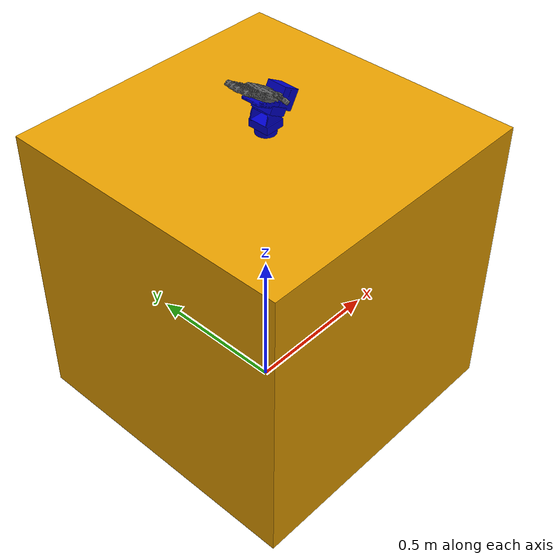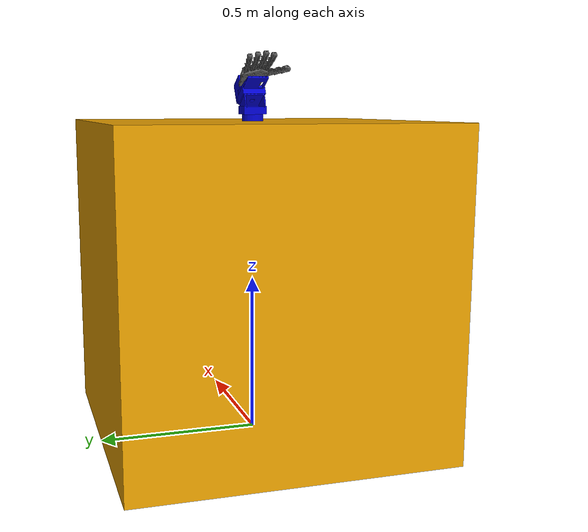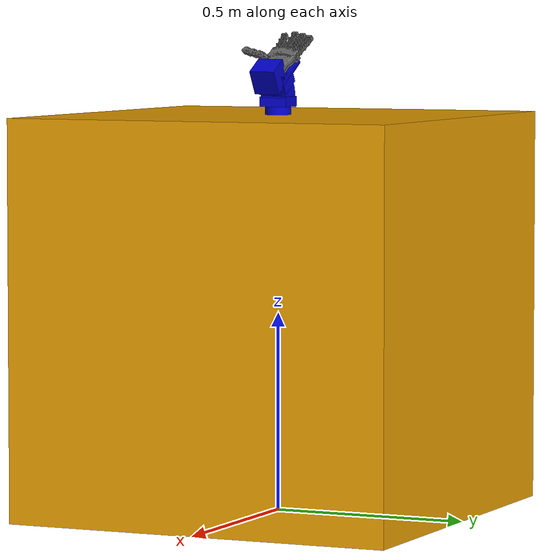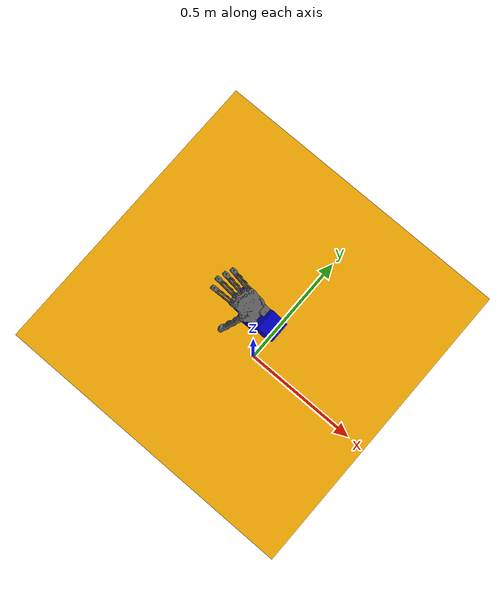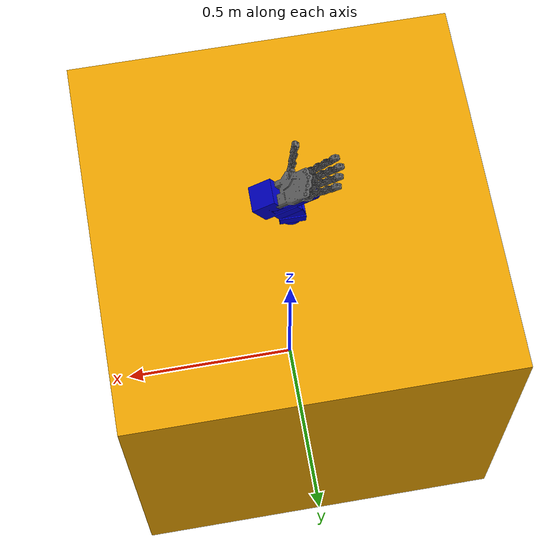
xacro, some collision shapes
<?xml version="1.0"?>
<robot xmlns:xacro="http://www.ros.org/wiki/xacro" name="soft_hand">

	<xacro:include filename="$(find soft_hand_description)/model/soft_hand.urdf.xacro"/>
	<xacro:include filename="$(find soft_hand_description)/model/accesories/kuka_coupler.urdf.xacro"/>

	<link name="box">
		<inertial>
			<mass value="1.0"/>
			<inertia  ixx="1" ixy="0.00"  ixz="0.00" iyy="1" iyz="0.00" izz="1" />
		</inertial>
		<visual>
			<origin xyz="0 0 0.50" rpy="0 0 0"/>
			<geometry>
				<box size="1.0 1.0 1.0"/>
			</geometry>
		</visual>
		<collision>
			<origin xyz="0 0 0.50" rpy="0 0 0"/>
			<geometry>
				<box size="1.0 1.0 1.0"/>
			</geometry>
		</collision>
	</link>

	<xacro:soft_hand parent="box" name="soft_hand" withAdaptiveTransmission="true" useMimicTag="true" left="true">
		<origin xyz="0.0 0.0 1.0" rpy="0 0 0"/>
	</xacro:soft_hand>

</robot>

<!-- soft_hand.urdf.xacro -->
<robot xmlns:xacro="http://www.ros.org/wiki/xacro">

	<!-- include other model components -->
	<xacro:include filename="$(find soft_hand_description)/model/materials.urdf.xacro"/>
	<xacro:include filename="$(find soft_hand_description)/model/soft_hand.transmission.xacro"/>
	<xacro:include filename="$(find soft_hand_description)/model/soft_hand.gazebo.xacro"/>
	<xacro:include filename="$(find soft_hand_description)/model/soft_hand.inertia.xacro"/>

	<!-- accesories -->
	<xacro:include filename="$(find soft_hand_description)/model/accesories/kuka_coupler.urdf.xacro"/>
	<xacro:include filename="$(find soft_hand_description)/model/accesories/clamp.urdf.xacro"/>
	<xacro:include filename="$(find soft_hand_description)/model/accesories/clamp_30_90.urdf.xacro"/>
	<xacro:include filename="$(find soft_hand_description)/model/accesories/softhand_base.urdf.xacro"/>
	<xacro:include filename="$(find soft_hand_description)/model/accesories/merged_angle_flange_30.urdf.xacro"/>
	<xacro:include filename="$(find soft_hand_description)/model/accesories/merged_angle_flange_90.urdf.xacro"/>

	<!-- joint properties -->
	<xacro:property name="abd_lb" value="-30" />
	<xacro:property name="abd_ub" value="30" />
	<xacro:property name="thumb_abd_lb" value="0" />
	<xacro:property name="thumb_abd_ub" value="90" />
	<xacro:property name="inner_lb" value="0" />
	<xacro:property name="inner_ub" value="45" />
	<xacro:property name="middle_lb" value="0" />
	<xacro:property name="middle_ub" value="45" />
	<xacro:property name="outer_lb" value="0" />
	<xacro:property name="outer_ub" value="45" />
	<xacro:property name="velocity" value="100" />
	<xacro:property name="effort" value="100" />
	<xacro:property name="damping" value="0.0" />
	<xacro:property name="friction" value="0.0" />
	<xacro:property name="pi" value="3.1415926535897931"/>

	<!-- synergy vector -->
	<xacro:property name="syn_amp" value="1" />
	<xacro:property name="thumb_abd_R" value="${1.3*syn_amp}" />
	<xacro:property name="thumb_inner_R" value="${1.3*syn_amp}" />
	<xacro:property name="thumb_outer_R" value="${1.0*syn_amp}" />
	<xacro:property name="index_abd_R" value="-${0.2*syn_amp}" />
	<xacro:property name="index_inner_R" value="${1.0*syn_amp}" />
	<xacro:property name="index_middle_R" value="${1.0*syn_amp}" />
	<xacro:property name="index_outer_R" value="${1.0*syn_amp}" />
	<xacro:property name="middle_abd_R" value="${0.0*syn_amp}" />
	<xacro:property name="middle_inner_R" value="${1.0*syn_amp}" />
	<xacro:property name="middle_middle_R" value="${1.0*syn_amp}" />
	<xacro:property name="middle_outer_R" value="${1.0*syn_amp}" />
	<xacro:property name="ring_abd_R" value="${0.2*syn_amp}" />
	<xacro:property name="ring_inner_R" value="${1.0*syn_amp}" />
	<xacro:property name="ring_middle_R" value="${1.0*syn_amp}" />
	<xacro:property name="ring_outer_R" value="${1.0*syn_amp}" />
	<xacro:property name="little_abd_R" value="${0.4*syn_amp}" />
	<xacro:property name="little_inner_R" value="${1.0*syn_amp}" />
	<xacro:property name="little_middle_R" value="${1.0*syn_amp}" />
	<xacro:property name="little_outer_R" value="${1.0*syn_amp}" />

	<!-- synergy joint properties -->
	<xacro:property name="synergy_lb" value="0.0" />
	<xacro:property name="synergy_ub" value="1.0"/>
	<xacro:property name="max_synergy_velocity" value="100000" />
	<xacro:property name="max_synergy_effort" value="100" />
	<xacro:property name="synergy_damping" value="0.0" />
	<xacro:property name="synergy_friction" value="0.0" />

	<!-- SOFT FINGER model -->
	<!-- 4 fingers are equal (index, middle, ring, little) -->
	<xacro:macro name="soft_finger" params="parent parent_name name position orientation left useMimicTag abd_R inner_R middle_R outer_R">

		<!-- KNUCKLE -->
		<joint name="${name}_abd_joint" type="revolute">
			<origin xyz="${position}" rpy="${orientation}" />
			<parent link="${parent}"/>
			<child link="${name}_knuckle_link"/>
			<xacro:if value="${left}">
				<axis xyz="0 0 -1" />
			</xacro:if>
			<xacro:unless value="${left}">
				<axis xyz="0 0 1" />
			</xacro:unless>
			<limit lower="${abd_lb *pi/180}" upper="${abd_ub *pi/180}" effort="${effort}" velocity="${velocity}"/>
			<dynamics damping="${damping}" friction="${friction}"/>
			<xacro:if value="${useMimicTag}">
				<mimic joint="${parent_name}_synergy_joint" multiplier="${abd_R}"/>
			</xacro:if>
		</joint>

		<link name="${name}_knuckle_link">
			<inertial>
				<xacro:insert_block name="knuckle_inertia"/>
			</inertial>
			<visual>
				<geometry>
					<mesh filename="package://soft_hand_description/meshes/knuckle.stl" scale=" .001 .001 .001" />
				</geometry>
				<material name="SoftHand/DarkGrey" />
			</visual>
			<collision>
				<geometry>
					<mesh filename="package://soft_hand_description/meshes/knuckle_collision.stl" scale=" .001 .001 .001" />
				</geometry>
			</collision>
		</link>

		<!-- PROXIMAL PHALANGE -->
		<joint name="${name}_inner_joint" type="revolute">
			<origin xyz="0.009 0 0" rpy="0 0 0" />
			<parent link="${name}_knuckle_link"/>
			<child link="${name}_fake_link1"/>
			<axis xyz="0 -1 0" />
			<limit lower="${inner_lb *pi/180}" upper="${inner_ub *pi/180}" effort="${effort}" velocity="${velocity}"/>
			<dynamics damping="${damping}" friction="${friction}"/>
			<xacro:if value="${useMimicTag}">
				<mimic joint="${parent_name}_synergy_joint" multiplier="${inner_R}"/>
			</xacro:if>
		</joint>

		<link name="${name}_fake_link1">
			<inertial>
				<xacro:insert_block name="negligible_inertia"/>
			</inertial>
		</link>

		<joint name="${name}_inner_joint_mimic" type="revolute">
			<origin xyz="0.013 0 0" rpy="0 0 0" />
			<parent link="${name}_fake_link1"/>
			<child link="${name}_proximal_link"/>
			<axis xyz="0 -1 0" />
			<limit lower="${inner_lb *pi/180}" upper="${inner_ub *pi/180}" effort="${effort}" velocity="${velocity}"/>
			<dynamics damping="${damping}" friction="${friction}"/>
			<xacro:if value="${useMimicTag}">
				<mimic joint="${parent_name}_synergy_joint" multiplier="${inner_R}" />
			</xacro:if>
		</joint>

		<link name="${name}_proximal_link">
			<inertial>
				<xacro:insert_block name="phalanx_inertia"/>
			</inertial>
			<visual>
				<geometry>
					<mesh filename="package://soft_hand_description/meshes/phalanx.stl" scale=" .001 .001 .001" />
				</geometry>
				<material name="SoftHand/DarkGrey" />
			</visual>
			<collision>
				<geometry>
					<mesh filename="package://soft_hand_description/meshes/phalanx_collision.stl" scale=" .001 .001 .001" />
				</geometry>
			</collision>
		</link>

		<!-- MIDDLE PHALANGE -->
		<joint name="${name}_middle_joint" type="revolute">
			<origin xyz="0.009 0 0" rpy="0 0 0" />
			<parent link="${name}_proximal_link"/>
			<child link="${name}_fake_link2"/>
			<axis xyz="0 -1 0" />
			<limit lower="${middle_lb *pi/180}" upper="${middle_ub *pi/180}" effort="${effort}" velocity="${velocity}"/>
			<dynamics damping="${damping}" friction="${friction}"/>
			<xacro:if value="${useMimicTag}">
				<mimic joint="${parent_name}_synergy_joint" multiplier="${middle_R}"/>
			</xacro:if>
		</joint>

		<link name="${name}_fake_link2">
			<inertial>
				<xacro:insert_block name="negligible_inertia"/>
			</inertial>
		</link>

		<joint name="${name}_middle_joint_mimic" type="revolute">
			<origin xyz="0.013 0 0" rpy="0 0 0" />
			<parent link="${name}_fake_link2"/>
			<child link="${name}_middle_link"/>
			<axis xyz="0 -1 0" />
			<limit lower="${middle_lb *pi/180}" upper="${middle_ub *pi/180}" effort="${effort}" velocity="${velocity}"/>
			<dynamics damping="${damping}" friction="${friction}"/>
			<xacro:if value="${useMimicTag}">
				<mimic joint="${parent_name}_synergy_joint" multiplier="${middle_R}"/>
			</xacro:if>
		</joint>
		<link name="${name}_middle_link">
			<inertial>
				<xacro:insert_block name="phalanx_inertia"/>
			</inertial>
			<visual>
				<geometry>
					<mesh filename="package://soft_hand_description/meshes/phalanx.stl" scale=" .001 .001 .001" />
				</geometry>
				<material name="SoftHand/DarkGrey" />
			</visual>
			<collision>
				<geometry>
					<mesh filename="package://soft_hand_description/meshes/phalanx_collision.stl" scale=" .001 .001 .001" />
				</geometry>
			</collision>
		</link>

		<!-- DISTAL PHALANGE -->
		<joint name="${name}_outer_joint" type="revolute">
			<origin xyz="0.009 0 0" rpy="0 0 0" />
			<parent link="${name}_middle_link"/>
			<child link="${name}_fake_link3"/>
			<axis xyz="0 -1 0" />
			<limit lower="${outer_lb *pi/180}" upper="${outer_ub *pi/180}" effort="${effort}" velocity="${velocity}"/>
			<dynamics damping="${damping}" friction="${friction}"/>
			<xacro:if value="${useMimicTag}">
				<mimic joint="${parent_name}_synergy_joint" multiplier="${outer_R}"/>
			</xacro:if>
		</joint>

		<link name="${name}_fake_link3">
			<inertial>
				<xacro:insert_block name="negligible_inertia"/>
			</inertial>
		</link>

		<joint name="${name}_outer_joint_mimic" type="revolute">
			<origin xyz="0.013 0 0" rpy="0 0 0" />
			<parent link="${name}_fake_link3"/>
			<child link="${name}_distal_link"/>
			<axis xyz="0 -1 0" />
			<limit lower="${outer_lb *pi/180}" upper="${outer_ub *pi/180}" effort="${effort}" velocity="${velocity}"/>
			<dynamics damping="${damping}" friction="${friction}"/>
			<xacro:if value="${useMimicTag}">
				<mimic joint="${parent_name}_synergy_joint" multiplier="${outer_R}"/>
			</xacro:if>
		</joint>
		<link name="${name}_distal_link">
			<inertial>
				<xacro:insert_block name="fingertip_inertia"/>
			</inertial>
			<visual>
				<geometry>
					<mesh filename="package://soft_hand_description/meshes/fingertip.stl" scale=" .001 .001 .001" />
				</geometry>
				<material name="SoftHand/DarkGrey" />
			</visual>
			<collision>
				<geometry>
					<mesh filename="package://soft_hand_description/meshes/fingertip_collision.stl" scale=" .001 .001 .001" />
				</geometry>
			</collision>
		</link>

	</xacro:macro>

	<!-- THUMB MODEL -->
	<!-- It has one joint less than rest of fingers -->
	<xacro:macro name="soft_thumb" params="parent parent_name name left position orientation useMimicTag abd_R inner_R outer_R">

		<xacro:if value="${left}">
			<!-- KNUCKLE -->
			<joint name="${name}_abd_joint" type="revolute">
				<origin xyz="${position}" rpy="${orientation}" />
				<parent link="${parent}"/>
				<child link="${name}_knuckle_link"/>
				<axis xyz="0 0 1" />
				<limit lower="${thumb_abd_lb *pi/180}" upper="${thumb_abd_ub *pi/180}" effort="${effort}" velocity="${velocity}"/>
				<dynamics damping="${damping}" friction="${friction}"/>
				<xacro:if value="${useMimicTag}">
					<mimic joint="${parent_name}_synergy_joint" multiplier="${abd_R}"/>
				</xacro:if>
			</joint>

			<link name="${name}_knuckle_link">
				<inertial>
					<xacro:insert_block name="thumb_knuckle_inertia"/>
				</inertial>
				<visual>
					<geometry>
						<mesh filename="package://soft_hand_description/meshes/thumb_knuckle_left.stl" scale=" .001 .001 .001" />
					</geometry>
					<material name="SoftHand/DarkGrey" />
				</visual>
				<collision>
					<geometry>
						<mesh filename="package://soft_hand_description/meshes/thumb_knuckle_left_collision.stl" scale=" .001 .001 .001" />
					</geometry>
				</collision>
			</link>

			<!-- PROXIMAL PHALANGE -->
			<joint name="${name}_inner_joint" type="revolute">
				<origin xyz="0.022500000 0.003300000 0.0" rpy="-0.426627741408745 0 0.0" />
				<parent link="${name}_knuckle_link"/>
				<child link="${name}_fake_link1"/>
				<axis xyz="0 -1 0" />
				<limit lower="${inner_lb *pi/180}" upper="${inner_ub *pi/180}" effort="${effort}" velocity="${velocity}"/>
				<dynamics damping="${damping}" friction="${friction}"/>
				<xacro:if value="${useMimicTag}">
					<mimic joint="${parent_name}_synergy_joint" multiplier="${inner_R}"/>
				</xacro:if>
			</joint>
		</xacro:if>
		<xacro:unless value="${left}">
			<!-- KNUCKLE -->
			<joint name="${name}_abd_joint" type="revolute">
				<origin xyz="${position}" rpy="${orientation}" />
				<parent link="${parent}"/>
				<child link="${name}_knuckle_link"/>
				<axis xyz="0 0 -1" />
				<limit lower="${thumb_abd_lb *pi/180}" upper="${thumb_abd_ub *pi/180}" effort="${effort}" velocity="${velocity}"/>
				<dynamics damping="${damping}" friction="${friction}"/>
				<xacro:if value="${useMimicTag}">
					<mimic joint="${parent_name}_synergy_joint" multiplier="${abd_R}"/>
				</xacro:if>
			</joint>

			<link name="${name}_knuckle_link">
				<inertial>
					<xacro:insert_block name="thumb_knuckle_inertia"/>
				</inertial>
				<visual>
					<geometry>
						<mesh filename="package://soft_hand_description/meshes/thumb_knuckle_right.stl" scale=" .001 .001 .001" />
					</geometry>
					<material name="SoftHand/DarkGrey" />
				</visual>
				<collision>
					<geometry>
						<mesh filename="package://soft_hand_description/meshes/thumb_knuckle_right_collision.stl" scale=" .001 .001 .001" />
					</geometry>
				</collision>
			</link>

			<!-- PROXIMAL PHALANGE -->
			<joint name="${name}_inner_joint" type="revolute">
				<origin xyz="0.022500000 -0.003300000 0.0" rpy="0.42662757656587236 0.0 0.0"/>
				<parent link="${name}_knuckle_link"/>
				<child link="${name}_fake_link1"/>
				<axis xyz="0 -1 0" />
				<limit lower="${inner_lb *pi/180}" upper="${inner_ub *pi/180}" effort="${effort}" velocity="${velocity}"/>
				<dynamics damping="${damping}" friction="${friction}"/>
				<xacro:if value="${useMimicTag}">
					<mimic joint="${parent_name}_synergy_joint" multiplier="${inner_R}"/>
				</xacro:if>
			</joint>
		</xacro:unless>

		<link name="${name}_fake_link1">
			<inertial>
				<xacro:insert_block name="negligible_inertia"/>
			</inertial>
		</link>

		<joint name="${name}_inner_joint_mimic" type="revolute">
			<origin xyz="0.013 0 0" rpy="0 0 0" />
			<parent link="${name}_fake_link1"/>
			<child link="${name}_proximal_link"/>
			<axis xyz="0 -1 0" />
			<limit lower="${inner_lb *pi/180}" upper="${inner_ub *pi/180}" effort="${effort}" velocity="${velocity}"/>
			<dynamics damping="${damping}" friction="${friction}"/>
			<xacro:if value="${useMimicTag}">
				<mimic joint="${parent_name}_synergy_joint" multiplier="${inner_R}" />
			</xacro:if>
		</joint>

		<link name="${name}_proximal_link">
			<inertial>
				<xacro:insert_block name="phalanx_inertia"/>
			</inertial>
			<visual>
				<geometry>
					<mesh filename="package://soft_hand_description/meshes/phalanx.stl" scale=" .001 .001 .001" />
				</geometry>
				<material name="SoftHand/DarkGrey" />
			</visual>
			<collision>
				<geometry>
					<mesh filename="package://soft_hand_description/meshes/phalanx_collision.stl" scale=" .001 .001 .001" />
				</geometry>
			</collision>
		</link>

		<!-- DISTAL PHALANGE -->
		<joint name="${name}_outer_joint" type="revolute">
			<origin xyz="0.009 0 0.0" rpy="0 0 0" />
			<parent link="${name}_proximal_link"/>
			<child link="${name}_fake_link3"/>
			<axis xyz="0 -1 0" />
			<limit lower="${outer_lb *pi/180}" upper="${outer_ub *pi/180}" effort="${effort}" velocity="${velocity}"/>
			<dynamics damping="${damping}" friction="${friction}"/>
			<xacro:if value="${useMimicTag}">
				<mimic joint="${parent_name}_synergy_joint" multiplier="${outer_R}"/>
			</xacro:if>
		</joint>

		<link name="${name}_fake_link3">
			<inertial>
				<xacro:insert_block name="negligible_inertia"/>
			</inertial>
		</link>

		<joint name="${name}_outer_joint_mimic" type="revolute">
			<origin xyz="0.013 0 0" rpy="0 0 0" />
			<parent link="${name}_fake_link3"/>
			<child link="${name}_distal_link"/>
			<axis xyz="0 -1 0" />
			<limit lower="${outer_lb *pi/180}" upper="${outer_ub *pi/180}" effort="${effort}" velocity="${velocity}"/>
			<dynamics damping="${damping}" friction="${friction}"/>
			<xacro:if value="${useMimicTag}">
				<mimic joint="${parent_name}_synergy_joint" multiplier="${outer_R}" />
			</xacro:if>
		</joint>
		<link name="${name}_distal_link">
			<inertial>
				<xacro:insert_block name="fingertip_inertia"/>
			</inertial>
			<visual>
				<geometry>
					<mesh filename="package://soft_hand_description/meshes/fingertip.stl" scale=" .001 .001 .001" />
				</geometry>
				<material name="SoftHand/DarkGrey" />
			</visual>
			<collision>
				<geometry>
					<mesh filename="package://soft_hand_description/meshes/fingertip_collision.stl" scale=" .001 .001 .001" />
				</geometry>
			</collision>
		</link>
	</xacro:macro>

	<!-- SOFT HAND MODEL -->
	<xacro:macro name="soft_hand" params="parent name withAdaptiveTransmission useMimicTag left *origin">

		<!-- PACMAN VERION ALREADY INCLUDES THE COUPLER, CLAMP AND BASE -->

		<!-- KUKA_COUPLER -->
		<xacro:kuka_coupler parent="${parent}" name="${name}_kuka_coupler">
			<xacro:insert_block name="origin"/>
		</xacro:kuka_coupler>

		<!-- KUKA CLAMP -->
		<xacro:clamp parent="${name}_kuka_coupler" name="${name}_clamp">
			<origin xyz="0 0 0.01" rpy="0 0 0"/>
		</xacro:clamp>

		<!-- 30 DEG FLANGE -->
		<xacro:flange_30 parent="${name}_clamp" name="${name}_flange_30">
			<origin xyz="0 0 0.008" rpy="1.5708 0 1.5708"/>
		</xacro:flange_30>

		<!-- CLAMP 30 - 90 -->
		<xacro:clamp_30_90 parent="${name}_flange_30" name="${name}_clamp_30_90">
			<origin xyz="0 0.037 0.012" rpy="0 1.0472 1.5708"/>
		</xacro:clamp_30_90>

		<!-- 90 DEG FLANGE -->
		<xacro:flange_90 parent="${name}_clamp_30_90" name="${name}_flange_90">
			<origin xyz="0.06 0.00 0.008" rpy="1.5708 0 -1.5708"/>
		</xacro:flange_90>

		<!-- SOFT HAND BASE -->
		<xacro:softhand_base parent="${name}_flange_90" name="${name}_softhand_base" left="${left}">
			<origin xyz="0 0.03 0.120" rpy="0 3.1415 -1.5708"/>
		</xacro:softhand_base>

		<!-- PALM -->
		<joint name="${name}_palm_joint" type="fixed">
			<xacro:if value="${left}">
				<origin xyz="0.002 -0.00695 0.0535" rpy="0 0 0"/>
			</xacro:if>
			<xacro:unless value="${left}">
				<origin xyz="0.002 0.00695 0.0535" rpy="0 0 0"/>
			</xacro:unless>
			<parent link="${name}_softhand_base" />
			<child link="${name}_palm_link" />
		</joint>

		<link name="${name}_palm_link">
			<inertial>
				<xacro:insert_block name="palm_inertia"/>
			</inertial>
			<xacro:if value="${left}">
				<visual>
					<geometry>
						<mesh filename="package://soft_hand_description/meshes/palm_left.stl" scale=" .001 .001 .001" />
					</geometry>
					<material name="SoftHand/DarkGrey" />
				</visual>
				<collision>
					<geometry>
						<mesh filename="package://soft_hand_description/meshes/palm_left_collision.stl" scale=" .001 .001 .001" />
					</geometry>
				</collision>
			</xacro:if>
			<xacro:unless value="${left}">
				<visual>
					<geometry>
						<mesh filename="package://soft_hand_description/meshes/palm_right.stl" scale=" .001 .001 .001" />
					</geometry>
					<material name="SoftHand/DarkGrey" />
				</visual>
				<collision>
					<geometry>
						<mesh filename="package://soft_hand_description/meshes/palm_right_collision.stl" scale=" .001 .001 .001" />
					</geometry>
				</collision>
			</xacro:unless>
		</link>

		<!-- MOTOR JOINT -->
		<joint name="${name}_synergy_joint" type="revolute" >
			<parent link="${name}_palm_link" />
			<child link="${name}_invisible_wire_link"/>
			<axis xyz="0 0 1" />
			<limit lower="${synergy_lb}" upper="${synergy_ub}" effort="${max_synergy_effort}" velocity="${max_synergy_velocity}"/>
			<dynamics damping="${synergy_damping}" friction="${synergy_friction}"/>
		</joint>
		<link name="${name}_invisible_wire_link">
			<inertial>
				<xacro:insert_block name="negligible_inertia"/>
			</inertial>
		</link>

		<!-- THUMB AND FINGERS -->
		<!-- change anchor points accordingly to the leftness -->
		<xacro:if value="${left}">
			<xacro:soft_thumb parent="${name}_palm_link" parent_name="${name}" name="${name}_thumb" position="0.005669722 -0.029616 0.055314" orientation="0.0 -0.38397275793662144 -1.5707963267948966" left="${left}" useMimicTag="${useMimicTag}" abd_R="${thumb_abd_R *(thumb_abd_ub - thumb_abd_lb)*pi/180}" inner_R="${thumb_inner_R *(inner_ub - inner_lb)*pi/180}" outer_R="${thumb_outer_R *(outer_ub - outer_lb)*pi/180}"/>

			<xacro:soft_finger parent="${name}_palm_link" parent_name="${name}" name="${name}_index" position="-0.0033 -0.0195 0.0936994" orientation="-1.5707963267948966 -1.4835299330931884 -1.5707963267948966" left="${left}" useMimicTag="${useMimicTag}" abd_R="${index_abd_R}" inner_R="${index_inner_R *(inner_ub - inner_lb)*pi/180}" middle_R="${index_middle_R *(middle_ub - middle_lb)*pi/180}" outer_R="${index_outer_R *(outer_ub - outer_lb)*pi/180}" />

			<xacro:soft_finger parent="${name}_palm_link" parent_name="${name}" name="${name}_middle" position="-0.0033 0.0 0.100699" orientation="3.1415 -1.5707963267948966 0.0" left="${left}" useMimicTag="${useMimicTag}" abd_R="${middle_abd_R}" inner_R="${middle_inner_R *(inner_ub - inner_lb)*pi/180}" middle_R="${middle_middle_R *(middle_ub - middle_lb)*pi/180}" outer_R="${middle_outer_R *(outer_ub - outer_lb)*pi/180}" />

			<xacro:soft_finger parent="${name}_palm_link" parent_name="${name}" name="${name}_ring" position="-0.0033 0.0195 0.0936994" orientation="1.5707963267948966 -1.5184364298870514 1.5707963267948966" left="${left}" useMimicTag="${useMimicTag}" abd_R="${ring_abd_R}" inner_R="${ring_inner_R *(inner_ub - inner_lb)*pi/180}" middle_R="${ring_middle_R *(middle_ub - middle_lb)*pi/180}" outer_R="${ring_outer_R *(outer_ub - outer_lb)*pi/180}" />

			<xacro:soft_finger parent="${name}_palm_link" parent_name="${name}" name="${name}_little" position="-0.0033 0.039 0.0836994" orientation="1.5707963267948966 -1.4835299330931884 1.5707963267948966" left="${left}" useMimicTag="${useMimicTag}" abd_R="${little_abd_R}" inner_R="${little_inner_R *(inner_ub - inner_lb)*pi/180}" middle_R="${little_middle_R *(middle_ub - middle_lb)*pi/180}" outer_R="${little_outer_R *(outer_ub - outer_lb)*pi/180}" />
		</xacro:if>
		<xacro:unless value="${left}">
			<xacro:soft_thumb parent="${name}_palm_link" parent_name="${name}" name="${name}_thumb" position="0.00566972 0.0296160 0.0553140" orientation="0.0 -0.38397275793662144 1.5707963267948966" left="${left}" useMimicTag="${useMimicTag}" abd_R="${thumb_abd_R *(thumb_abd_ub - thumb_abd_lb)*pi/180}" inner_R="${thumb_inner_R *(inner_ub - inner_lb)*pi/180}" outer_R="${thumb_outer_R *(outer_ub - outer_lb)*pi/180}"/>

			<xacro:soft_finger parent="${name}_palm_link" parent_name="${name}" name="${name}_index" position="-0.0033 0.0195 0.0936994" orientation="1.5707963267948966 -1.4835299330931884 1.5707963267948966" left="${left}" useMimicTag="${useMimicTag}" abd_R="${index_abd_R}" inner_R="${index_inner_R *(inner_ub - inner_lb)*pi/180}" middle_R="${index_middle_R *(middle_ub - middle_lb)*pi/180}" outer_R="${index_outer_R *(outer_ub - outer_lb)*pi/180}" />

			<xacro:soft_finger parent="${name}_palm_link" parent_name="${name}" name="${name}_middle" position="-0.003300000 0.0 0.100699" orientation="3.141592 -1.5707963267948966 0.0" left="${left}" useMimicTag="${useMimicTag}" abd_R="${middle_abd_R}" inner_R="${middle_inner_R *(inner_ub - inner_lb)*pi/180}" middle_R="${middle_middle_R *(middle_ub - middle_lb)*pi/180}" outer_R="${middle_outer_R *(outer_ub - outer_lb)*pi/180}" />

			<xacro:soft_finger parent="${name}_palm_link" parent_name="${name}" name="${name}_ring" position="-0.0033 -0.0195 0.0936994" orientation="-1.5707963267948966 -1.5184364298870514 -1.5707963267948966 " left="${left}" useMimicTag="${useMimicTag}" abd_R="${ring_abd_R}" inner_R="${ring_inner_R *(inner_ub - inner_lb)*pi/180}" middle_R="${ring_middle_R *(middle_ub - middle_lb)*pi/180}" outer_R="${ring_outer_R *(outer_ub - outer_lb)*pi/180}" />

			<xacro:soft_finger parent="${name}_palm_link" parent_name="${name}" name="${name}_little" position="-0.0033 -0.039 0.0836994" orientation="-1.5707963267948966 -1.4835299330931884 -1.5707963267948966" left="${left}" useMimicTag="${useMimicTag}" abd_R="${little_abd_R}" inner_R="${little_inner_R *(inner_ub - inner_lb)*pi/180}" middle_R="${little_middle_R *(middle_ub - middle_lb)*pi/180}" outer_R="${little_outer_R *(outer_ub - outer_lb)*pi/180}" />
		</xacro:unless>

		<xacro:soft_hand_transmission name="${name}" withAdaptiveTransmission="${withAdaptiveTransmission}"/>
		<xacro:soft_hand_gazebo name="${name}" withAdaptiveTransmission="${withAdaptiveTransmission}" useMimicTag="${useMimicTag}"/>

	</xacro:macro>

</robot>

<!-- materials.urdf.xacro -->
<robot>

	<material name="SoftHand/LightGrey">
		<color rgba="0.7 0.7 0.7 1.0"/>
	</material>

	<material name="SoftHand/DarkGrey">
		<color rgba="0.4 0.4 0.4 1.0"/>
	</material>

	<material name="SoftHand/Black">
		<color rgba="0.0 0.0 0.0 1.0"/>
	</material>

	<material name="SoftHand/DarkGolden">
		<color rgba="0.4 0.4 0.3 1.0"/>
	</material>

	<material name="SoftHand/Blue">
		<color rgba="0.0 0.0 0.8 0.9"/>
	</material>

	<material name="SoftHand/LightBlue">
		<color rgba="0.0 0.4 1.0 0.5"/>
	</material>

</robot>

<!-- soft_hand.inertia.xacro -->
<robot xmlns:xacro="http://www.ros.org/wiki/xacro">

    <!-- NOTE: inertia values are approximated using meshlab and only using the significant elements -->

    <!-- conversions -->
    <!-- I couldn't make the simulation work with realistic values, so I tweaked the conversion values -->
    <!-- use below for the kuka robots -->
    <xacro:property name="mm_to_m" value="0.001"/>
    <xacro:property name="mm2_to_m2" value="0.001"/>
    <xacro:property name="gr_to_Kg" value="0.01"/>

    <!-- use below for the wam robot -->

    <!-- not so negligible, otherwise simulation fails -->
    <xacro:property name="negligible_mass" value="${10*gr_to_Kg}"/>
    <xacro:property name="negligible_inertia">
        <origin xyz="0 0 0"/>
        <mass value="${negligible_mass}"/>
        <inertia ixx="${negligible_mass * 10 * mm2_to_m2}" ixy="0.0" ixz="0.0" iyy="${negligible_mass * 10 * mm2_to_m2}" iyz="0.0" izz="${negligible_mass * 10 * mm2_to_m2}"/>
    </xacro:property>

    <xacro:property name="knuckle_mass" value="${9*gr_to_Kg}"/>
    <xacro:property name="knuckle_inertia">
        <origin xyz="${1.285644*mm_to_m} ${-0.000958*mm_to_m} ${0.425011*mm_to_m}"/>
        <mass value="${knuckle_mass}"/>
        <inertia ixx="${knuckle_mass * 45 * mm2_to_m2}" ixy="0.0" ixz="${knuckle_mass * 5 * mm2_to_m2}" iyy="${knuckle_mass * 90 * mm2_to_m2}" iyz="0.0" izz="${knuckle_mass * 70 * mm2_to_m2}"/>
    </xacro:property>

    <xacro:property name="thumb_knuckle_mass" value="${9*gr_to_Kg}"/>
    <xacro:property name="thumb_knuckle_inertia">
        <origin xyz="${13.608098*mm_to_m} ${-0.532174*mm_to_m} ${-0.216691*mm_to_m}"/>
        <mass value="${thumb_knuckle_mass}"/>
        <inertia ixx="${thumb_knuckle_mass * 35 * mm2_to_m2}" ixy="${thumb_knuckle_mass * 3 * mm2_to_m2}" ixz="${thumb_knuckle_mass * -6 * mm2_to_m2}" iyy="${thumb_knuckle_mass * 100 * mm2_to_m2}" iyz="${thumb_knuckle_mass * 2 * mm2_to_m2}" izz="${thumb_knuckle_mass * 100 * mm2_to_m2}"/>
    </xacro:property>

    <xacro:property name="phalanx_mass" value="${5*gr_to_Kg}"/>
    <xacro:property name="phalanx_inertia">
        <origin xyz="${5.074337*mm_to_m} ${-0.004524*mm_to_m} ${-0.262953*mm_to_m}"/>
        <mass value="${phalanx_mass}"/>
        <inertia ixx="${phalanx_mass * 35 * mm2_to_m2}" ixy="0.0" ixz="${phalanx_mass * 2 * mm2_to_m2}" iyy="${phalanx_mass * 55 * mm2_to_m2}" iyz="0.0" izz="${phalanx_mass * 55 * mm2_to_m2}"/>
    </xacro:property>

    <xacro:property name="fingertip_mass" value="${10*gr_to_Kg}"/>
    <xacro:property name="fingertip_inertia">
        <origin xyz="${9.849094*mm_to_m} ${0.000560*mm_to_m} ${0.820286*mm_to_m}"/>
        <mass value="${fingertip_mass}"/>
        <inertia ixx="${fingertip_mass * 35 * mm2_to_m2}" ixy="0.0" ixz="${fingertip_mass * 2 * mm2_to_m2}" iyy="${fingertip_mass * 80 * mm2_to_m2}" iyz="0.0" izz="${fingertip_mass * 76 * mm2_to_m2}"/>
    </xacro:property>

    <xacro:property name="palm_mass" value="${228*gr_to_Kg}"/>
    <xacro:property name="palm_inertia">
        <origin xyz="${-4.568758*mm_to_m} ${-6.808116*mm_to_m} ${27.653328*mm_to_m}"/>
        <mass value="${palm_mass}"/>
        <inertia ixx="${palm_mass * 715 * mm2_to_m2}" ixy="${palm_mass * 10 * mm2_to_m2}" ixz="${palm_mass * 10 * mm2_to_m2}" iyy="${palm_mass * 415 * mm2_to_m2}" iyz="${palm_mass * 20 * mm2_to_m2}" izz="${palm_mass * 485 * mm2_to_m2}"/>
    </xacro:property>
</robot>

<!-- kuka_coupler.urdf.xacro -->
<robot xmlns:xacro="http://www.ros.org/wiki/xacro">

<xacro:macro name="kuka_coupler" params="parent name *origin">
  <joint name="${parent}_${name}_joint" type="fixed">
    <xacro:insert_block name="origin"/>
    <parent link="${parent}"/>
    <child link="${name}_bottom"/>
  </joint>
  <link name="${name}_bottom">
    <visual>
      <origin xyz="0 0 0.0115" rpy="0 0 0"/>
      <geometry>
         <!-- mesh filename="package://soft_hand_description/meshes/accesories/kuka_coupler.stl"/-->
         <cylinder radius="0.033" length="0.023"/>
      </geometry>
      <material name="SoftHand/Blue"/>
    </visual>
    <collision>
      <origin xyz="0 0 0.031" rpy="0 0 0"/>
      <geometry>
        <cylinder radius="0.033" length="0.023"/>
      </geometry>
    </collision>
  </link>
  <joint name="${parent}_${name}_base_joint" type="fixed">
    <origin xyz="0 0 0.023" rpy="0 0 0"/>
    <parent link="${name}_bottom"/>
    <child link="${name}"/>
  </joint>
  <link name="${name}"/>
</xacro:macro>

</robot>

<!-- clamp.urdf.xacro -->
<robot xmlns:xacro="http://www.ros.org/wiki/xacro">

<xacro:macro name="clamp" params="parent name *origin">
  <joint name="${parent}_${name}_joint" type="fixed">
    <xacro:insert_block name="origin"/>
    <parent link="${parent}"/>
    <child link="${name}"/>
  </joint>
  <link name="${name}">
    <visual>
      <origin xyz="0 0 0" rpy="0 0 0"/>
      <geometry>
        <mesh filename="package://soft_hand_description/meshes/accesories/clamp.stl"/>
      </geometry>
      <material name="SoftHand/Blue"/>
    </visual>
    <collision>
      <origin xyz="0 0 0" rpy="0 0 0"/>
      <geometry>
        <box size="0.066 0.0725 0.0256"/>
      </geometry>
    </collision>
  </link>
</xacro:macro>

</robot>

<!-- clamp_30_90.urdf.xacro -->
<robot xmlns:xacro="http://www.ros.org/wiki/xacro">

<xacro:macro name="clamp_30_90" params="parent name *origin">
  <joint name="${parent}_${name}_joint" type="fixed">
    <xacro:insert_block name="origin"/>
    <parent link="${parent}"/>
    <child link="${name}"/>
  </joint>
  <link name="${name}">
    <visual>
      <origin xyz="0 0 0" rpy="0 0 0"/>
      <geometry>
        <mesh filename="package://soft_hand_description/meshes/accesories/clamp.stl"/>
      </geometry>
      <material name="SoftHand/Blue"/>
    </visual>
    <collision>
      <origin xyz="0 0 0" rpy="0 0 0"/>
      <geometry>
        <box size="0.066 0.0725 0.0256"/>
      </geometry>
    </collision>
  </link>
</xacro:macro>

</robot>

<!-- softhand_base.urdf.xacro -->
<robot xmlns:xacro="http://www.ros.org/wiki/xacro">

<xacro:macro name="softhand_base" params="parent name left *origin">
  <joint name="${parent}_${name}_joint" type="fixed">
    <xacro:insert_block name="origin"/>
    <parent link="${parent}"/>
    <child link="${name}"/>
  </joint>
  <link name="${name}">
    <visual>
      <origin xyz="0 0 0" rpy="0 0 0"/>
      <geometry>
        <xacro:if value="${left}">
          <mesh filename="package://soft_hand_description/meshes/accesories/softhand_base_left.stl"/>
        </xacro:if>
        <xacro:unless value="${left}">
          <mesh filename="package://soft_hand_description/meshes/accesories/softhand_base_right.stl"/>
        </xacro:unless>
      </geometry>
      <material name="SoftHand/Blue"/>
    </visual>
    <collision>
      <origin xyz="0 0 0.031" rpy="0 0 0"/>
      <geometry>
        <box size="0.066 0.066 0.062"/>
      </geometry>
    </collision>
  </link>
</xacro:macro>

</robot>

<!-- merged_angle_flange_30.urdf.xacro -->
<robot xmlns:xacro="http://www.ros.org/wiki/xacro">

<xacro:macro name="flange_30" params="parent name *origin">
  <joint name="${parent}_${name}_joint" type="fixed">
    <xacro:insert_block name="origin"/>
    <parent link="${parent}"/>
    <child link="${name}"/>
  </joint>
  <link name="${name}">
    <visual>
      <origin xyz="0 0 0" rpy="0 0 0"/>
      <geometry>
        <mesh filename="package://soft_hand_description/meshes/accesories/merged_angle_flange_30.stl" scale="0.001 0.001 0.001"/>
      </geometry>
      <material name="SoftHand/Blue"/>
    </visual>
    <collision>
      <origin xyz="0 0 0" rpy="0 0 0"/>
      <geometry>
        <box size="0.066 0.0725 0.0456"/>
      </geometry>
    </collision>
  </link>
</xacro:macro>

</robot>

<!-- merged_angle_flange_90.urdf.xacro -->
<robot xmlns:xacro="http://www.ros.org/wiki/xacro">

<xacro:macro name="flange_90" params="parent name *origin">
  <joint name="${parent}_${name}_joint" type="fixed">
    <xacro:insert_block name="origin"/>
    <parent link="${parent}"/>
    <child link="${name}"/>
  </joint>
  <link name="${name}">
    <visual>
      <origin xyz="0 0 0" rpy="0 0 0"/>
      <geometry>
        <mesh filename="package://soft_hand_description/meshes/accesories/merged_angle_flange_90.stl" scale="0.001 0.001 0.001"/>
      </geometry>
      <material name="SoftHand/Blue"/>
    </visual>
    <collision>
      <origin xyz="0 0 0" rpy="0 0 0"/>
      <geometry>
        <box size="0.066 0.0725 0.12"/>
      </geometry>
    </collision>
  </link>
</xacro:macro>

</robot>
